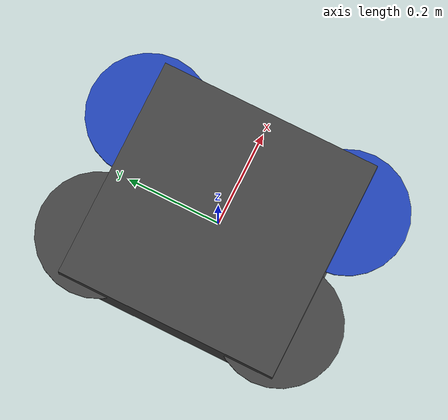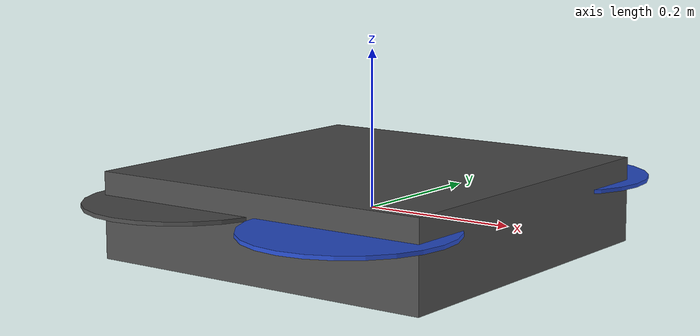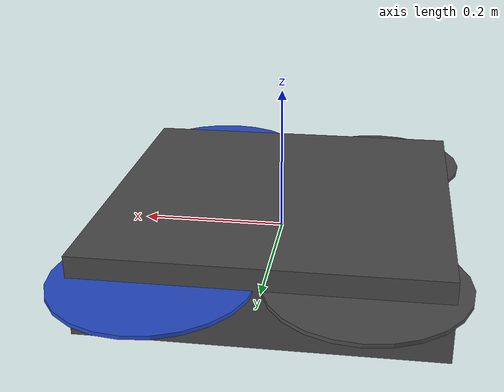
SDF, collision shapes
<sdf version='1.5'>
  <model name='iris_rangefinder'>
    <include>
      <uri>model://iris</uri>
    </include>

    <include>
      <pose>0 0 -0.035 0 0 0</pose>
      <uri>model://rangefinder</uri>
    </include>

    <joint name="rangefinder_mount" type="fixed">
      <parent>iris::base_link</parent>
      <child>rangefinder::link</child>
    </joint>

  </model>
</sdf>

<!-- vim: set et ft=xml fenc=utf-8 ff=unix sts=0 sw=2 ts=2 : -->

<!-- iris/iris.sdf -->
<!-- DO NOT EDIT: Generated from iris.sdf.jinja -->
<sdf version='1.6'>
  <model name='iris'>
    <link name='base_link'>
      <pose>0 0 0 0 0 0</pose>
      <inertial>
        <pose>0 0 0 0 0 0</pose>
        <mass>1.5</mass>
        <inertia>
          <ixx>0.029125</ixx>
          <ixy>0</ixy>
          <ixz>0</ixz>
          <iyy>0.029125</iyy>
          <iyz>0</iyz>
          <izz>0.055225</izz>
        </inertia>
      </inertial>
      <collision name='base_link_inertia_collision'>
        <pose>0 0 0 0 0 0</pose>
        <geometry>
          <box>
            <size>0.47 0.47 0.11</size>
          </box>
        </geometry>
        <surface>
          <contact>
            <ode>
              <min_depth>0.001</min_depth>
              <max_vel>0</max_vel>
            </ode>
          </contact>
          <friction>
            <ode/>
          </friction>
        </surface>
      </collision>
      <visual name='base_link_inertia_visual'>
        <pose>0 0 0 0 0 0</pose>
        <geometry>
          <mesh>
            <scale>1 1 1</scale>
            <uri>model://iris/meshes/iris.stl</uri>
          </mesh>
        </geometry>
        <material>
          <script>
            <name>Gazebo/DarkGrey</name>
            <uri>file://media/materials/scripts/gazebo.material</uri>
          </script>
        </material>
      </visual>
      <gravity>1</gravity>
      <velocity_decay/>
    </link>
    <link name='/imu_link'>
      <pose>0 0 0 0 0 0</pose>
      <inertial>
        <pose>0 0 0 0 0 0</pose>
        <mass>0.015</mass>
        <inertia>
          <ixx>1e-05</ixx>
          <ixy>0</ixy>
          <ixz>0</ixz>
          <iyy>1e-05</iyy>
          <iyz>0</iyz>
          <izz>1e-05</izz>
        </inertia>
      </inertial>
      <sensor name="imu_sensor" type="imu">
        <pose>0 0 0 3.141593 0 0</pose>
        <always_on>1</always_on>
        <update_rate>1000.0</update_rate>
      </sensor>
    </link>
    <joint name='/imu_joint' type='revolute'>
      <child>/imu_link</child>
      <parent>base_link</parent>
      <axis>
        <xyz>1 0 0</xyz>
        <limit>
          <lower>0</lower>
          <upper>0</upper>
          <effort>0</effort>
          <velocity>0</velocity>
        </limit>
        <dynamics>
          <spring_reference>0</spring_reference>
          <spring_stiffness>0</spring_stiffness>
        </dynamics>
        <use_parent_model_frame>1</use_parent_model_frame>
      </axis>
    </joint>
    <link name='rotor_0'>
      <pose>0.13 -0.22 0.023 0 0 0</pose>
      <inertial>
        <pose>0 0 0 0 0 0</pose>
        <mass>0.005</mass>
        <inertia>
          <ixx>9.75e-07</ixx>
          <ixy>0</ixy>
          <ixz>0</ixz>
          <iyy>0.000273104</iyy>
          <iyz>0</iyz>
          <izz>0.000274004</izz>
        </inertia>
      </inertial>
      <collision name='rotor_0_collision'>
        <pose>0 0 0 0 0 0</pose>
        <geometry>
          <cylinder>
            <length>0.005</length>
            <radius>0.128</radius>
          </cylinder>
        </geometry>
        <surface>
          <contact>
            <ode/>
          </contact>
          <friction>
            <ode/>
          </friction>
        </surface>
      </collision>
      <visual name='rotor_0_visual'>
        <pose>0 0 0 0 0 0</pose>
        <geometry>
          <mesh>
            <scale>1 1 1</scale>
            <uri>model://iris/meshes/iris_prop_ccw.dae</uri>
          </mesh>
        </geometry>
        <material>
          <script>
            <name>Gazebo/Blue</name>
            <uri>file://media/materials/scripts/gazebo.material</uri>
          </script>
        </material>
      </visual>
      <gravity>1</gravity>
      <velocity_decay/>
    </link>
    <joint name='rotor_0_joint' type='revolute'>
      <child>rotor_0</child>
      <parent>base_link</parent>
      <axis>
        <xyz>0 0 1</xyz>
        <limit>
          <lower>-1e+16</lower>
          <upper>1e+16</upper>
        </limit>
        <dynamics>
          <spring_reference>0</spring_reference>
          <spring_stiffness>0</spring_stiffness>
        </dynamics>
        <use_parent_model_frame>1</use_parent_model_frame>
      </axis>
    </joint>
    <link name='rotor_1'>
      <pose>-0.13 0.2 0.023 0 0 0</pose>
      <inertial>
        <pose>0 0 0 0 0 0</pose>
        <mass>0.005</mass>
        <inertia>
          <ixx>9.75e-07</ixx>
          <ixy>0</ixy>
          <ixz>0</ixz>
          <iyy>0.000273104</iyy>
          <iyz>0</iyz>
          <izz>0.000274004</izz>
        </inertia>
      </inertial>
      <collision name='rotor_1_collision'>
        <pose>0 0 0 0 0 0</pose>
        <geometry>
          <cylinder>
            <length>0.005</length>
            <radius>0.128</radius>
          </cylinder>
        </geometry>
        <surface>
          <contact>
            <ode/>
          </contact>
          <friction>
            <ode/>
          </friction>
        </surface>
      </collision>
      <visual name='rotor_1_visual'>
        <pose>0 0 0 0 0 0</pose>
        <geometry>
          <mesh>
            <scale>1 1 1</scale>
            <uri>model://iris/meshes/iris_prop_ccw.dae</uri>
          </mesh>
        </geometry>
        <material>
          <script>
            <name>Gazebo/DarkGrey</name>
            <uri>file://media/materials/scripts/gazebo.material</uri>
          </script>
        </material>
      </visual>
      <gravity>1</gravity>
      <velocity_decay/>
    </link>
    <joint name='rotor_1_joint' type='revolute'>
      <child>rotor_1</child>
      <parent>base_link</parent>
      <axis>
        <xyz>0 0 1</xyz>
        <limit>
          <lower>-1e+16</lower>
          <upper>1e+16</upper>
        </limit>
        <dynamics>
          <spring_reference>0</spring_reference>
          <spring_stiffness>0</spring_stiffness>
        </dynamics>
        <use_parent_model_frame>1</use_parent_model_frame>
      </axis>
    </joint>
    <link name='rotor_2'>
      <pose>0.13 0.22 0.023 0 0 0</pose>
      <inertial>
        <pose>0 0 0 0 0 0</pose>
        <mass>0.005</mass>
        <inertia>
          <ixx>9.75e-07</ixx>
          <ixy>0</ixy>
          <ixz>0</ixz>
          <iyy>0.000273104</iyy>
          <iyz>0</iyz>
          <izz>0.000274004</izz>
        </inertia>
      </inertial>
      <collision name='rotor_2_collision'>
        <pose>0 0 0 0 0 0</pose>
        <geometry>
          <cylinder>
            <length>0.005</length>
            <radius>0.128</radius>
          </cylinder>
        </geometry>
        <surface>
          <contact>
            <ode/>
          </contact>
          <friction>
            <ode/>
          </friction>
        </surface>
      </collision>
      <visual name='rotor_2_visual'>
        <pose>0 0 0 0 0 0</pose>
        <geometry>
          <mesh>
            <scale>1 1 1</scale>
            <uri>model://iris/meshes/iris_prop_cw.dae</uri>
          </mesh>
        </geometry>
        <material>
          <script>
            <name>Gazebo/Blue</name>
            <uri>file://media/materials/scripts/gazebo.material</uri>
          </script>
        </material>
      </visual>
      <gravity>1</gravity>
      <velocity_decay/>
    </link>
    <joint name='rotor_2_joint' type='revolute'>
      <child>rotor_2</child>
      <parent>base_link</parent>
      <axis>
        <xyz>0 0 1</xyz>
        <limit>
          <lower>-1e+16</lower>
          <upper>1e+16</upper>
        </limit>
        <dynamics>
          <spring_reference>0</spring_reference>
          <spring_stiffness>0</spring_stiffness>
        </dynamics>
        <use_parent_model_frame>1</use_parent_model_frame>
      </axis>
    </joint>
    <link name='rotor_3'>
      <pose>-0.13 -0.2 0.023 0 0 0</pose>
      <inertial>
        <pose>0 0 0 0 0 0</pose>
        <mass>0.005</mass>
        <inertia>
          <ixx>9.75e-07</ixx>
          <ixy>0</ixy>
          <ixz>0</ixz>
          <iyy>0.000273104</iyy>
          <iyz>0</iyz>
          <izz>0.000274004</izz>
        </inertia>
      </inertial>
      <collision name='rotor_3_collision'>
        <pose>0 0 0 0 0 0</pose>
        <geometry>
          <cylinder>
            <length>0.005</length>
            <radius>0.128</radius>
          </cylinder>
        </geometry>
        <surface>
          <contact>
            <ode/>
          </contact>
          <friction>
            <ode/>
          </friction>
        </surface>
      </collision>
      <visual name='rotor_3_visual'>
        <pose>0 0 0 0 0 0</pose>
        <geometry>
          <mesh>
            <scale>1 1 1</scale>
            <uri>model://iris/meshes/iris_prop_cw.dae</uri>
          </mesh>
        </geometry>
        <material>
          <script>
            <name>Gazebo/DarkGrey</name>
            <uri>file://media/materials/scripts/gazebo.material</uri>
          </script>
        </material>
      </visual>
      <gravity>1</gravity>
      <velocity_decay/>
    </link>
    <joint name='rotor_3_joint' type='revolute'>
      <child>rotor_3</child>
      <parent>base_link</parent>
      <axis>
        <xyz>0 0 1</xyz>
        <limit>
          <lower>-1e+16</lower>
          <upper>1e+16</upper>
        </limit>
        <dynamics>
          <spring_reference>0</spring_reference>
          <spring_stiffness>0</spring_stiffness>
        </dynamics>
        <use_parent_model_frame>1</use_parent_model_frame>
      </axis>
    </joint>

    <plugin name="rotor_0_blade_1" filename="libLiftDragPlugin.so">
      <a0>0.3</a0>
      <alpha_stall>1.4</alpha_stall>
      <cla>4.2500</cla>
      <cda>0.10</cda>
      <cma>0.00</cma>
      <cla_stall>-0.025</cla_stall>
      <cda_stall>0.0</cda_stall>
      <cma_stall>0.0</cma_stall>
      <area>0.002</area>
      <air_density>1.2041</air_density>
      <cp>0.084 0 0</cp>
      <forward>0 1 0</forward>
      <upward>0 0 1</upward>
      <link_name>iris::rotor_0</link_name>
    </plugin>
    <plugin name="rotor_0_blade_2" filename="libLiftDragPlugin.so">
      <a0>0.3</a0>
      <alpha_stall>1.4</alpha_stall>
      <cla>4.2500</cla>
      <cda>0.10</cda>
      <cma>0.00</cma>
      <cla_stall>-0.025</cla_stall>
      <cda_stall>0.0</cda_stall>
      <cma_stall>0.0</cma_stall>
      <area>0.002</area>
      <air_density>1.2041</air_density>
      <cp>-0.084 0 0</cp>
      <forward>0 -1 0</forward>
      <upward>0 0 1</upward>
      <link_name>iris::rotor_0</link_name>
    </plugin>

    <plugin name="rotor_1_blade_1" filename="libLiftDragPlugin.so">
      <a0>0.3</a0>
      <alpha_stall>1.4</alpha_stall>
      <cla>4.2500</cla>
      <cda>0.10</cda>
      <cma>0.00</cma>
      <cla_stall>-0.025</cla_stall>
      <cda_stall>0.0</cda_stall>
      <cma_stall>0.0</cma_stall>
      <area>0.002</area>
      <air_density>1.2041</air_density>
      <cp>0.084 0 0</cp>
      <forward>0 1 0</forward>
      <upward>0 0 1</upward>
      <link_name>iris::rotor_1</link_name>
    </plugin>
    <plugin name="rotor_1_blade_2" filename="libLiftDragPlugin.so">
      <a0>0.3</a0>
      <alpha_stall>1.4</alpha_stall>
      <cla>4.2500</cla>
      <cda>0.10</cda>
      <cma>0.00</cma>
      <cla_stall>-0.025</cla_stall>
      <cda_stall>0.0</cda_stall>
      <cma_stall>0.0</cma_stall>
      <area>0.002</area>
      <air_density>1.2041</air_density>
      <cp>-0.084 0 0</cp>
      <forward>0 -1 0</forward>
      <upward>0 0 1</upward>
      <link_name>iris::rotor_1</link_name>
    </plugin>

    <plugin name="rotor_2_blade_1" filename="libLiftDragPlugin.so">
      <a0>0.3</a0>
      <alpha_stall>1.4</alpha_stall>
      <cla>4.2500</cla>
      <cda>0.10</cda>
      <cma>0.00</cma>
      <cla_stall>-0.025</cla_stall>
      <cda_stall>0.0</cda_stall>
      <cma_stall>0.0</cma_stall>
      <area>0.002</area>
      <air_density>1.2041</air_density>
      <cp>0.084 0 0</cp>
      <forward>0 -1 0</forward>
      <upward>0 0 1</upward>
      <link_name>iris::rotor_2</link_name>
    </plugin>
    <plugin name="rotor_2_blade_2" filename="libLiftDragPlugin.so">
      <a0>0.3</a0>
      <alpha_stall>1.4</alpha_stall>
      <cla>4.2500</cla>
      <cda>0.10</cda>
      <cma>0.00</cma>
      <cla_stall>-0.025</cla_stall>
      <cda_stall>0.0</cda_stall>
      <cma_stall>0.0</cma_stall>
      <area>0.002</area>
      <air_density>1.2041</air_density>
      <cp>-0.084 0 0</cp>
      <forward>0 1 0</forward>
      <upward>0 0 1</upward>
      <link_name>iris::rotor_2</link_name>
    </plugin>

    <plugin name="rotor_3_blade_1" filename="libLiftDragPlugin.so">
      <a0>0.3</a0>
      <alpha_stall>1.4</alpha_stall>
      <cla>4.2500</cla>
      <cda>0.10</cda>
      <cma>0.00</cma>
      <cla_stall>-0.025</cla_stall>
      <cda_stall>0.0</cda_stall>
      <cma_stall>0.0</cma_stall>
      <area>0.002</area>
      <air_density>1.2041</air_density>
      <cp>0.084 0 0</cp>
      <forward>0 -1 0</forward>
      <upward>0 0 1</upward>
      <link_name>iris::rotor_3</link_name>
    </plugin>
    <plugin name="rotor_3_blade_2" filename="libLiftDragPlugin.so">
      <a0>0.3</a0>
      <alpha_stall>1.4</alpha_stall>
      <cla>4.2500</cla>
      <cda>0.10</cda>
      <cma>0.00</cma>
      <cla_stall>-0.025</cla_stall>
      <cda_stall>0.0</cda_stall>
      <cma_stall>0.0</cma_stall>
      <area>0.002</area>
      <air_density>1.2041</air_density>
      <cp>-0.084 0 0</cp>
      <forward>0 1 0</forward>
      <upward>0 0 1</upward>
      <link_name>iris::rotor_3</link_name>
    </plugin>
    <plugin name="arducopter_plugin" filename="libArduPilotPlugin.so">
      <fdm_addr>127.0.0.1</fdm_addr>
      <fdm_port_in>9002</fdm_port_in>
      <fdm_port_out>9003</fdm_port_out>
      <!--
          Require by APM :
          Only change model and gazebo from XYZ to XY-Z coordinates
      -->
      <modelXYZToAirplaneXForwardZDown>0 0 0 3.141593 0 0</modelXYZToAirplaneXForwardZDown>
      <gazeboXYZToNED>0 0 0 3.141593 0 0</gazeboXYZToNED>
      <imuName>/imu_link::imu_sensor</imuName>
      <connectionTimeoutMaxCount>5</connectionTimeoutMaxCount>
      <control channel="0">
        <!--
          incoming control command [0, 1]
          so offset it by 0 to get [0, 1]
          and divide max target by 1.
          offset = 0
          multiplier = 838 max rpm / 1 = 838
        -->
        <type>VELOCITY</type>
        <offset>0</offset>
        <p_gain>0.20</p_gain>
        <i_gain>0</i_gain>
        <d_gain>0</d_gain>
        <i_max>0</i_max>
        <i_min>0</i_min>
        <cmd_max>2.5</cmd_max>
        <cmd_min>-2.5</cmd_min>
        <jointName>iris::rotor_0_joint</jointName>
        <multiplier>838</multiplier>
        <controlVelocitySlowdownSim>1</controlVelocitySlowdownSim>
      </control>
      <control channel="1">
        <type>VELOCITY</type>
        <offset>0</offset>
        <p_gain>0.20</p_gain>
        <i_gain>0</i_gain>
        <d_gain>0</d_gain>
        <i_max>0</i_max>
        <i_min>0</i_min>
        <cmd_max>2.5</cmd_max>
        <cmd_min>-2.5</cmd_min>
        <jointName>iris::rotor_1_joint</jointName>
        <multiplier>838</multiplier>
        <controlVelocitySlowdownSim>1</controlVelocitySlowdownSim>
      </control>
      <control channel="2">
        <type>VELOCITY</type>
        <offset>0</offset>
        <p_gain>0.20</p_gain>
        <i_gain>0</i_gain>
        <d_gain>0</d_gain>
        <i_max>0</i_max>
        <i_min>0</i_min>
        <cmd_max>2.5</cmd_max>
        <cmd_min>-2.5</cmd_min>
        <jointName>iris::rotor_2_joint</jointName>
        <multiplier>-838</multiplier>
        <controlVelocitySlowdownSim>1</controlVelocitySlowdownSim>
      </control>
      <control channel="3">
        <type>VELOCITY</type>
        <offset>0</offset>
        <p_gain>0.20</p_gain>
        <i_gain>0</i_gain>
        <d_gain>0</d_gain>
        <i_max>0</i_max>
        <i_min>0</i_min>
        <cmd_max>2.5</cmd_max>
        <cmd_min>-2.5</cmd_min>
        <jointName>iris::rotor_3_joint</jointName>
        <multiplier>-838</multiplier>
        <controlVelocitySlowdownSim>1</controlVelocitySlowdownSim>
      </control>
    </plugin>

  </model>
</sdf>

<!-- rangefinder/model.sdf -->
<sdf version="1.4">
  <model name="rangefinder">
    <link name="link">
      <pose>0 0 0 0 0 0</pose>
      <inertial>
        <pose>0 0 0 0 0 0</pose>
        <mass>0.01</mass>
        <inertia>
          <ixx>2.1733e-6</ixx>
          <ixy>0</ixy>
          <ixz>0</ixz>
          <iyy>2.1733e-6</iyy>
          <iyz>0</iyz>
          <izz>1.8e-7</izz>
        </inertia>
      </inertial>
      <collision name='collision'>
        <geometry>
          <cylinder>
            <radius>0.006</radius>
            <length>0.02</length>
          </cylinder>
        </geometry>

      </collision>
      <visual name="visual">
        <geometry>
          <cylinder>
            <radius>0.006</radius>
            <length>0.02</length>
          </cylinder>
        </geometry>
        <material>
          <script>
            <name>Gazebo/Black</name>
          </script>
        </material>
      </visual>
      <sensor name="ultra" type="ray">
        <pose>0 0 -0.03 0 1.57079633 0</pose>
        <always_on>true</always_on>
        <visualize>true</visualize>
        <update_rate>10</update_rate>
        <ray>
          <scan>
            <horizontal>
              <samples>5</samples>
              <resolution>1.000000</resolution>
              <min_angle>-0.12</min_angle>
              <max_angle>0.12</max_angle>
            </horizontal>
            <vertical>
              <samples>5</samples>
              <resolution>1.000000</resolution>
              <min_angle>-0.01</min_angle>
              <max_angle>0.01</max_angle>
            </vertical>
          </scan>
          <range>
            <min>0</min>
            <max>5</max>
            <resolution>0.1</resolution>
          </range>
        </ray>
        <plugin name="ultrasonic_sensor" filename="libgazebo_ros_ray_sensor.so">
        <output_type>sensor_msgs/LaserScan</output_type>
          <frame_name>link</frame_name>
        </plugin>
      </sensor>
    </link>
  </model>
</sdf>
